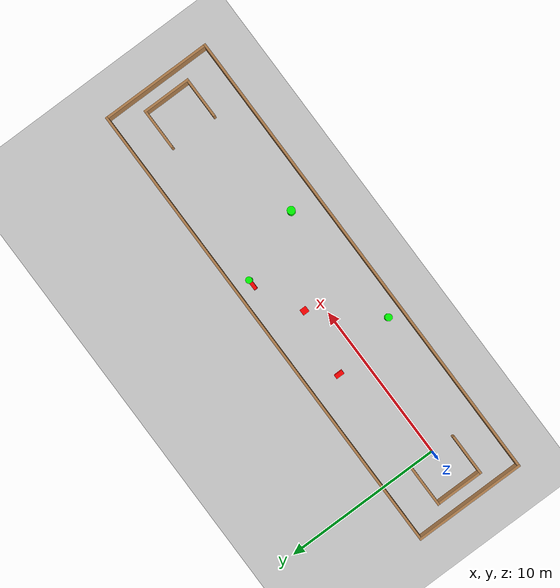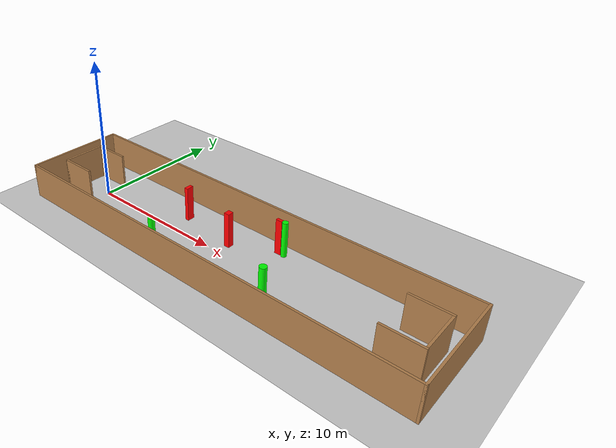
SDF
<sdf version="1.7">
 <world name="default">
  <light name="sun" type="directional">
   <pose>0 0 10 0 -0 0</pose>
   <diffuse>0.8 0.8 0.8 1</diffuse>
   <specular>0.2 0.2 0.2 1</specular>
   <attenuation>
    <range>1000</range>
    <constant>0.9</constant>
    <linear>0.01</linear>
    <quadratic>0.001</quadratic>
   </attenuation>
   <direction>-0.5 0.1 -0.9</direction>
   <spot><inner_angle>0</inner_angle><outer_angle>0</outer_angle><falloff>0</falloff></spot>
  </light>
  <model name="ground_plane">
   <static>1</static>
   <link name="link">
    <collision name="collision">
     <geometry><plane><normal>0 0 1</normal><size>100 100</size></plane></geometry>
     <surface>
      <contact><collide_bitmask>65535</collide_bitmask></contact>
      <friction><ode><mu>100</mu><mu2>50</mu2></ode></friction>
     </surface>
    </collision>
    <visual name="visual">
     <cast_shadows>0</cast_shadows>
     <geometry><plane><normal>0 0 1</normal><size>100 100</size></plane></geometry>
     <material>
      <script><uri>file://media/materials/scripts/gazebo.material</uri><name>Gazebo/Grey</name></script>
     </material>
    </visual>
   </link>
  </model>
  <gravity>0 0 -9.8</gravity>
  <magnetic_field>6e-06 2.3e-05 -4.2e-05</magnetic_field>
  <atmosphere type="adiabatic"/>
  <physics type="ode">
   <max_step_size>0.001</max_step_size>
   <real_time_factor>1</real_time_factor>
   <real_time_update_rate>1000</real_time_update_rate>
  </physics>
  <scene><ambient>0.4 0.4 0.4 1</ambient><background>0.7 0.7 0.7 1</background><shadows>1</shadows></scene>
  <spherical_coordinates>
   <surface_model>EARTH_WGS84</surface_model>
   <latitude_deg>0</latitude_deg>
   <longitude_deg>0</longitude_deg>
   <elevation>0</elevation>
   <heading_deg>0</heading_deg>
  </spherical_coordinates>
  <model name="my_base_walls">
   <link name="Wall_0">
    <collision name="Wall_0_Collision">
     <geometry><box><size>7.15 0.15 2.5</size></box></geometry>
     <pose>0 0 1.25 0 -0 0</pose>
    </collision>
    <visual name="Wall_0_Visual">
     <pose>0 0 1.25 0 -0 0</pose>
     <geometry><box><size>7.15 0.15 2.5</size></box></geometry>
     <material>
      <script><uri>file://media/materials/scripts/gazebo.material</uri><name>Gazebo/Wood</name></script>
      <ambient>1 1 1 1</ambient>
     </material>
     <meta><layer>0</layer></meta>
    </visual>
    <pose>-15 0 0 0 -0 1.5708</pose>
   </link>
   <link name="Wall_10">
    <collision name="Wall_10_Collision">
     <geometry><box><size>2.65 0.15 2.5</size></box></geometry>
     <pose>0 0 1.25 0 -0 0</pose>
    </collision>
    <visual name="Wall_10_Visual">
     <pose>0 0 1.25 0 -0 0</pose>
     <geometry><box><size>2.65 0.15 2.5</size></box></geometry>
     <material>
      <script><uri>file://media/materials/scripts/gazebo.material</uri><name>Gazebo/Wood</name></script>
      <ambient>1 1 1 1</ambient>
     </material>
     <meta><layer>0</layer></meta>
    </visual>
    <pose>-12.75 -1.5 0 0 -0 0</pose>
   </link>
   <link name="Wall_12">
    <collision name="Wall_12_Collision">
     <geometry><box><size>2.65 0.15 2.5</size></box></geometry>
     <pose>0 0 1.25 0 -0 0</pose>
    </collision>
    <visual name="Wall_12_Visual">
     <pose>0 0 1.25 0 -0 0</pose>
     <geometry><box><size>2.65 0.15 2.5</size></box></geometry>
     <material>
      <script><uri>file://media/materials/scripts/gazebo.material</uri><name>Gazebo/Wood</name></script>
      <ambient>1 1 1 1</ambient>
     </material>
     <meta><layer>0</layer></meta>
    </visual>
    <pose>-12.75 1.5 0 0 -0 0</pose>
   </link>
   <link name="Wall_14">
    <collision name="Wall_14_Collision">
     <geometry><box><size>3.15 0.15 2.5</size></box></geometry>
     <pose>0 0 1.25 0 -0 0</pose>
    </collision>
    <visual name="Wall_14_Visual">
     <pose>0 0 1.25 0 -0 0</pose>
     <geometry><box><size>3.15 0.15 2.5</size></box></geometry>
     <material>
      <script><uri>file://media/materials/scripts/gazebo.material</uri><name>Gazebo/Wood</name></script>
      <ambient>1 1 1 1</ambient>
     </material>
     <meta><layer>0</layer></meta>
    </visual>
    <pose>14 0 0 0 -0 -1.5708</pose>
   </link>
   <link name="Wall_15">
    <collision name="Wall_15_Collision">
     <geometry><box><size>2.65 0.15 2.5</size></box></geometry>
     <pose>0 0 1.25 0 -0 0</pose>
    </collision>
    <visual name="Wall_15_Visual">
     <pose>0 0 1.25 0 -0 0</pose>
     <geometry><box><size>2.65 0.15 2.5</size></box></geometry>
     <material>
      <script><uri>file://media/materials/scripts/gazebo.material</uri><name>Gazebo/Wood</name></script>
      <ambient>1 1 1 1</ambient>
     </material>
     <meta><layer>0</layer></meta>
    </visual>
    <pose>12.75 -1.5 0 0 -0 3.14159</pose>
   </link>
   <link name="Wall_17">
    <collision name="Wall_17_Collision">
     <geometry><box><size>2.65 0.15 2.5</size></box></geometry>
     <pose>0 0 1.25 0 -0 0</pose>
    </collision>
    <visual name="Wall_17_Visual">
     <pose>0 0 1.25 0 -0 0</pose>
     <geometry><box><size>2.65 0.15 2.5</size></box></geometry>
     <material>
      <script><uri>file://media/materials/scripts/gazebo.material</uri><name>Gazebo/Wood</name></script>
      <ambient>1 1 1 1</ambient>
     </material>
     <meta><layer>0</layer></meta>
    </visual>
    <pose>12.75 1.5 0 0 -0 3.14159</pose>
   </link>
   <link name="Wall_2">
    <collision name="Wall_2_Collision">
     <geometry><box><size>30.15 0.15 2.5</size></box></geometry>
     <pose>0 0 1.25 0 -0 0</pose>
    </collision>
    <visual name="Wall_2_Visual">
     <pose>0 0 1.25 0 -0 0</pose>
     <geometry><box><size>30.15 0.15 2.5</size></box></geometry>
     <material>
      <script><uri>file://media/materials/scripts/gazebo.material</uri><name>Gazebo/Wood</name></script>
      <ambient>1 1 1 1</ambient>
     </material>
     <meta><layer>0</layer></meta>
    </visual>
    <pose>-0 -3.5 0 0 -0 0</pose>
   </link>
   <link name="Wall_4">
    <collision name="Wall_4_Collision">
     <geometry><box><size>30.15 0.15 2.5</size></box></geometry>
     <pose>0 0 1.25 0 -0 0</pose>
    </collision>
    <visual name="Wall_4_Visual">
     <pose>0 0 1.25 0 -0 0</pose>
     <geometry><box><size>30.15 0.15 2.5</size></box></geometry>
     <material>
      <script><uri>file://media/materials/scripts/gazebo.material</uri><name>Gazebo/Wood</name></script>
      <ambient>1 1 1 1</ambient>
     </material>
     <meta><layer>0</layer></meta>
    </visual>
    <pose>-0 3.5 0 0 -0 0</pose>
   </link>
   <link name="Wall_6">
    <collision name="Wall_6_Collision">
     <geometry><box><size>7.15 0.15 2.5</size></box></geometry>
     <pose>0 0 1.25 0 -0 0</pose>
    </collision>
    <visual name="Wall_6_Visual">
     <pose>0 0 1.25 0 -0 0</pose>
     <geometry><box><size>7.15 0.15 2.5</size></box></geometry>
     <material>
      <script><uri>file://media/materials/scripts/gazebo.material</uri><name>Gazebo/Wood</name></script>
      <ambient>1 1 1 1</ambient>
     </material>
     <meta><layer>0</layer></meta>
    </visual>
    <pose>15 0 0 0 -0 -1.5708</pose>
   </link>
   <link name="Wall_9">
    <collision name="Wall_9_Collision">
     <geometry><box><size>3.15 0.15 2.5</size></box></geometry>
     <pose>0 0 1.25 0 -0 0</pose>
    </collision>
    <visual name="Wall_9_Visual">
     <pose>0 0 1.25 0 -0 0</pose>
     <geometry><box><size>3.15 0.15 2.5</size></box></geometry>
     <material>
      <script><uri>file://media/materials/scripts/gazebo.material</uri><name>Gazebo/Wood</name></script>
      <ambient>1 1 1 1</ambient>
     </material>
     <meta><layer>0</layer></meta>
    </visual>
    <pose>-14 0 0 0 -0 -1.5708</pose>
   </link>
   <static>1</static>
   <pose>11.5 0 0 0 -0 0</pose>
  </model>
  <model name="cylinder1">
   <static>1</static>
   <link name="link">
    <inertial>
     <mass>1</mass>
     <inertia><ixx>0.5</ixx><ixy>0</ixy><ixz>0</ixz><iyy>0.5</iyy><iyz>0</iyz><izz>1</izz></inertia>
    </inertial>
    <collision name="collision">
     <geometry><cylinder><radius>0.2203421305794472</radius><length>2.5</length></cylinder></geometry>
    </collision>
    <visual name="visual">
     <geometry><cylinder><radius>0.2203421305794472</radius><length>2.5</length></cylinder></geometry>
     <material>
      <ambient>0 1 0 1</ambient>
      <diffuse>0 1 0 1</diffuse>
      <specular>0.1 0.1 0.1 1</specular>
      <emissive>0 0 0 0</emissive>
     </material>
    </visual>
   </link>
   <pose>7.745781287434614 -2.6101638687488338 1.25 0 0 0</pose>
  </model>
  <model name="cylinder2">
   <static>1</static>
   <link name="link">
    <inertial>
     <mass>1</mass>
     <inertia><ixx>0.5</ixx><ixy>0</ixy><ixz>0</ixz><iyy>0.5</iyy><iyz>0</iyz><izz>1</izz></inertia>
    </inertial>
    <collision name="collision">
     <geometry><cylinder><radius>0.2001803950835969</radius><length>2.5</length></cylinder></geometry>
    </collision>
    <visual name="visual">
     <geometry><cylinder><radius>0.2001803950835969</radius><length>2.5</length></cylinder></geometry>
     <material>
      <ambient>0 1 0 1</ambient>
      <diffuse>0 1 0 1</diffuse>
      <specular>0.1 0.1 0.1 1</specular>
      <emissive>0 0 0 0</emissive>
     </material>
    </visual>
   </link>
   <pose>14.236131764126517 2.5254478500861577 1.25 0 0 0</pose>
  </model>
  <model name="cylinder3">
   <static>1</static>
   <link name="link">
    <inertial>
     <mass>1</mass>
     <inertia><ixx>0.5</ixx><ixy>0</ixy><ixz>0</ixz><iyy>0.5</iyy><iyz>0</iyz><izz>1</izz></inertia>
    </inertial>
    <collision name="collision">
     <geometry><cylinder><radius>0.2482864030040982</radius><length>2.5</length></cylinder></geometry>
    </collision>
    <visual name="visual">
     <geometry><cylinder><radius>0.2482864030040982</radius><length>2.5</length></cylinder></geometry>
     <material>
      <ambient>0 1 0 1</ambient>
      <diffuse>0 1 0 1</diffuse>
      <specular>0.1 0.1 0.1 1</specular>
      <emissive>0 0 0 0</emissive>
     </material>
    </visual>
   </link>
   <pose>15.984690431241757 -1.79369370442104 1.25 0 0 0</pose>
  </model>
  <model name="box1">
   <static>1</static>
   <link name="link">
    <inertial>
     <mass>1</mass>
     <inertia><ixx>0.083</ixx><ixy>0</ixy><ixz>0</ixz><iyy>0.083</iyy><iyz>0</iyz><izz>0.083</izz></inertia>
    </inertial>
    <collision name="collision">
     <geometry><box><size>0.25367720950722944 0.5344610862155414 2.5</size></box></geometry>
    </collision>
    <visual name="visual">
     <geometry><box><size>0.25367720950722944 0.5344610862155414 2.5</size></box></geometry>
     <material>
      <ambient>1 0 0 1</ambient>
      <diffuse>1 0 0 1</diffuse>
      <specular>0.1 0.1 0.1 1</specular>
      <emissive>0 0 0 0</emissive>
     </material>
    </visual>
    <sensor name="my_contact" type="contact">
     <contact><collision>box_collision</collision><topic>__default_topic__</topic></contact>
    </sensor>
   </link>
   <pose>6.817320609199978 1.6111000516855318 1.25 0 0 0</pose>
  </model>
  <model name="box2">
   <static>1</static>
   <link name="link">
    <inertial>
     <mass>1</mass>
     <inertia><ixx>0.083</ixx><ixy>0</ixy><ixz>0</ixz><iyy>0.083</iyy><iyz>0</iyz><izz>0.083</izz></inertia>
    </inertial>
    <collision name="collision">
     <geometry><box><size>0.37775548947409965 0.41882921264180023 2.5</size></box></geometry>
    </collision>
    <visual name="visual">
     <geometry><box><size>0.37775548947409965 0.41882921264180023 2.5</size></box></geometry>
     <material>
      <ambient>1 0 0 1</ambient>
      <diffuse>1 0 0 1</diffuse>
      <specular>0.1 0.1 0.1 1</specular>
      <emissive>0 0 0 0</emissive>
     </material>
    </visual>
    <sensor name="my_contact" type="contact">
     <contact><collision>box_collision</collision><topic>__default_topic__</topic></contact>
    </sensor>
   </link>
   <pose>10.930222975825016 1.0229157485253717 1.25 0 0 0</pose>
  </model>
  <model name="box3">
   <static>1</static>
   <link name="link">
    <inertial>
     <mass>1</mass>
     <inertia><ixx>0.083</ixx><ixy>0</ixy><ixz>0</ixz><iyy>0.083</iyy><iyz>0</iyz><izz>0.083</izz></inertia>
    </inertial>
    <collision name="collision">
     <geometry><box><size>0.4541283631841022 0.21529763327106266 2.5</size></box></geometry>
    </collision>
    <visual name="visual">
     <geometry><box><size>0.4541283631841022 0.21529763327106266 2.5</size></box></geometry>
     <material>
      <ambient>1 0 0 1</ambient>
      <diffuse>1 0 0 1</diffuse>
      <specular>0.1 0.1 0.1 1</specular>
      <emissive>0 0 0 0</emissive>
     </material>
    </visual>
    <sensor name="my_contact" type="contact">
     <contact><collision>box_collision</collision><topic>__default_topic__</topic></contact>
    </sensor>
   </link>
   <pose>13.81838077397404 2.513773596420098 1.25 0 0 0</pose>
  </model>
 </world>
</sdf>
